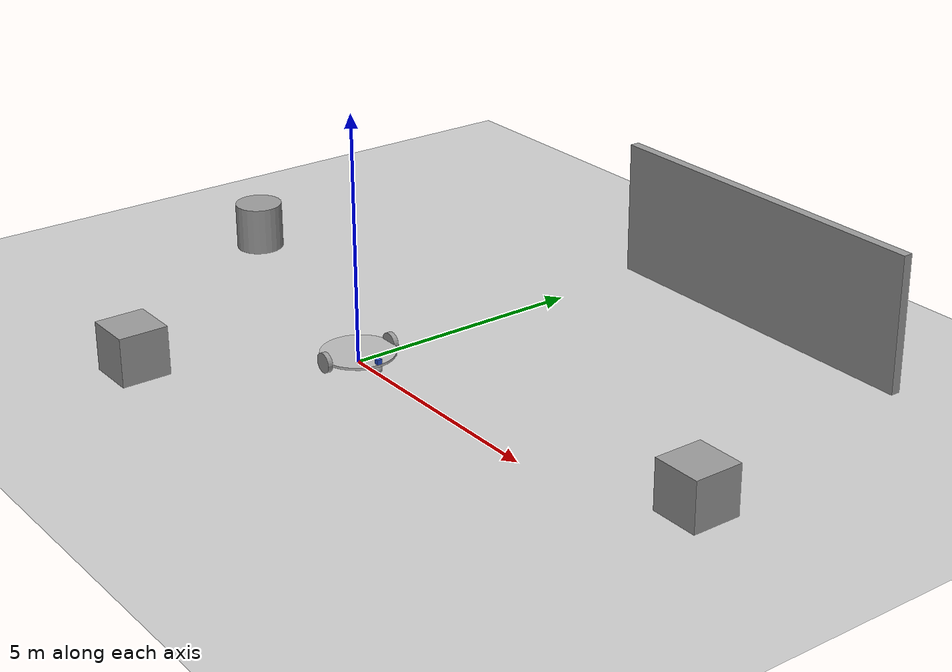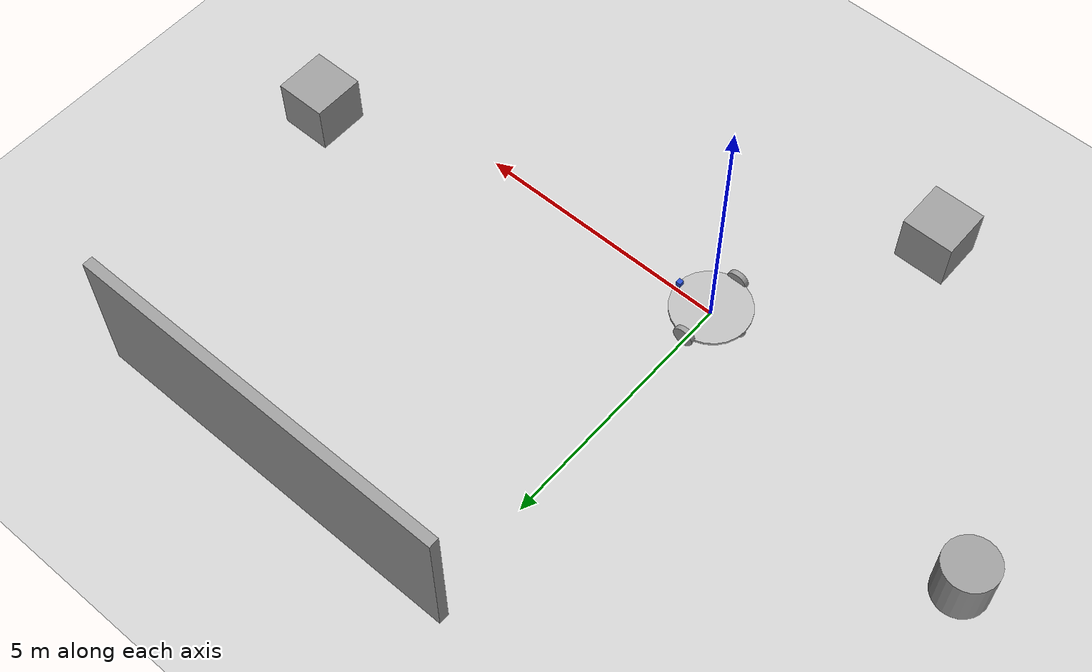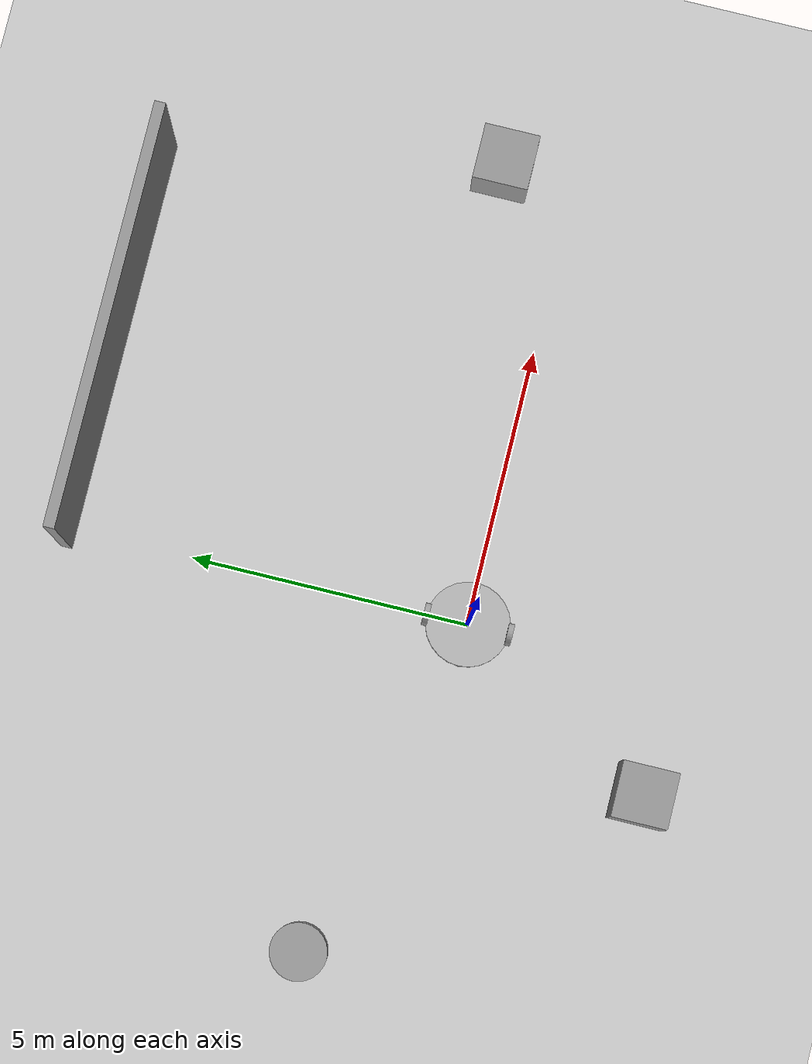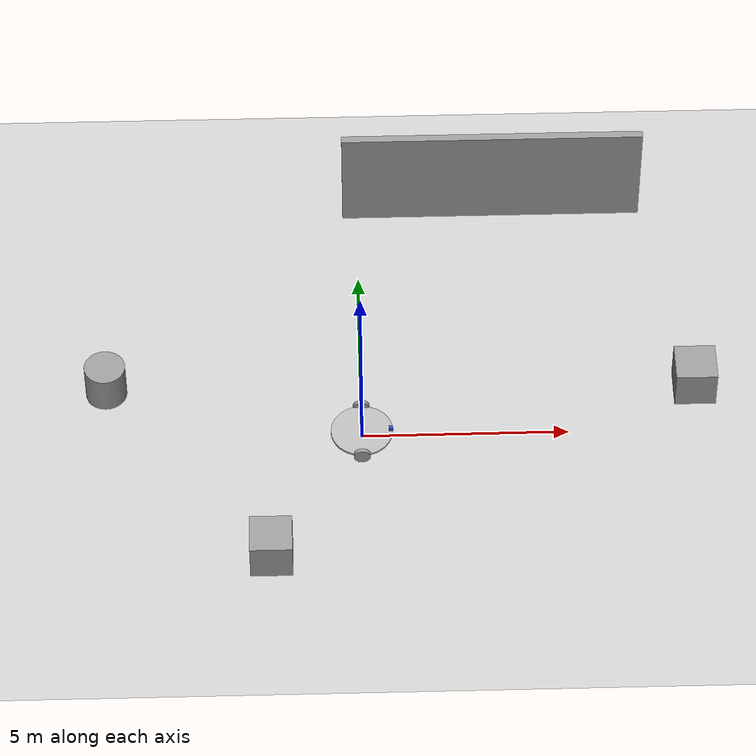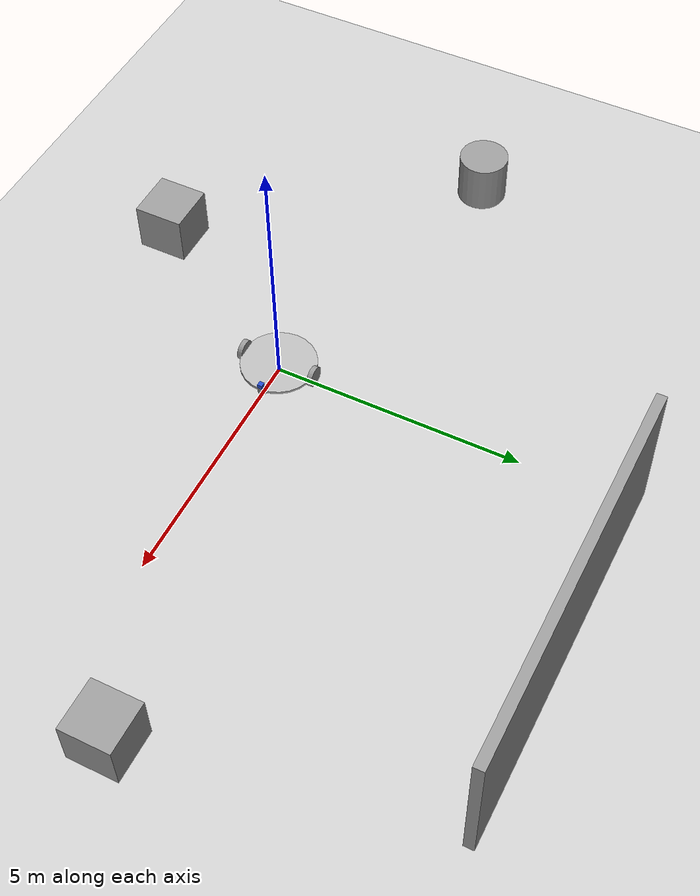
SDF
<sdf version="1.6">
 <world name="default">
  <light name="sun" type="directional">
   <pose>0 0 10 0 -0 0</pose>
   <diffuse>0.8 0.8 0.8 1</diffuse>
   <specular>0.2 0.2 0.2 1</specular>
   <attenuation>
    <range>1000</range>
    <constant>0.9</constant>
    <linear>0.01</linear>
    <quadratic>0.001</quadratic>
   </attenuation>
   <direction>-0.5 0.1 -0.9</direction>
  </light>
  <model name="ground_plane">
   <static>1</static>
   <link name="link">
    <collision name="collision">
     <geometry><plane><normal>0 0 1</normal><size>100 100</size></plane></geometry>
     <surface><friction><ode><mu>100</mu><mu2>50</mu2></ode></friction></surface>
    </collision>
    <visual name="visual">
     <cast_shadows>0</cast_shadows>
     <geometry><plane><normal>0 0 1</normal><size>100 100</size></plane></geometry>
     <material>
      <script><uri>file://media/materials/scripts/gazebo.material</uri><name>Gazebo/Grey</name></script>
     </material>
    </visual>
   </link>
  </model>
  <gravity>0 0 -9.8</gravity>
  <magnetic_field>6e-06 2.3e-05 -4.2e-05</magnetic_field>
  <atmosphere type="adiabatic"/>
  <physics name="default_physics" default="0" type="ode">
   <max_step_size>0.001</max_step_size>
   <real_time_factor>1</real_time_factor>
   <real_time_update_rate>1000</real_time_update_rate>
  </physics>
  <scene><ambient>0.4 0.4 0.4 1</ambient><background>0.7 0.7 0.7 1</background><shadows>1</shadows></scene>
  <spherical_coordinates>
   <surface_model>EARTH_WGS84</surface_model>
   <latitude_deg>0</latitude_deg>
   <longitude_deg>0</longitude_deg>
   <elevation>0</elevation>
   <heading_deg>0</heading_deg>
  </spherical_coordinates>
  <model name="grey_wall">
   <static>1</static>
   <link name="link">
    <pose>0 0 1.4 0 -0 0</pose>
    <collision name="collision"><geometry><box><size>7.5 0.2 2.8</size></box></geometry></collision>
    <visual name="visual">
     <cast_shadows>0</cast_shadows>
     <geometry><box><size>7.5 0.2 2.8</size></box></geometry>
     <material>
      <script>
       <uri>model://grey_wall/materials/scripts</uri>
       <uri>model://grey_wall/materials/textures</uri>
       <name>vrc/grey_wall</name>
      </script>
     </material>
    </visual>
   </link>
   <pose>3.39843 7.20345 0 0 -0 0</pose>
  </model>
  <audio><device>default</device></audio>
  <model name="robot">
   <link name="base_footprint">
    <inertial>
     <pose>0 0 0.2 0 -0 0</pose>
     <mass>5</mass>
     <inertia><ixx>2.02829</ixx><ixy>0</ixy><ixz>0</ixz><iyy>2.87329</iyy><iyz>0</iyz><izz>2.90125</izz></inertia>
    </inertial>
    <collision name="base_footprint_fixed_joint_lump__base_link_collision">
     <pose>0 0 0.2 0 -0 0</pose>
     <geometry><cylinder><length>0.05</length><radius>0.75</radius></cylinder></geometry>
    </collision>
    <collision name="base_footprint_fixed_joint_lump__caster_wheel_back_collision_1">
     <pose>-0.65 0 0.1 0 -0 0</pose>
     <geometry><sphere><radius>0.1</radius></sphere></geometry>
     <surface><friction><ode><mu>0</mu><mu2>0</mu2></ode></friction></surface>
    </collision>
    <collision name="base_footprint_fixed_joint_lump__caster_wheel_front_collision_2">
     <pose>0.65 0 0.1 0 -0 0</pose>
     <geometry><sphere><radius>0.1</radius></sphere></geometry>
     <surface><friction><ode><mu>0</mu><mu2>0</mu2></ode></friction></surface>
    </collision>
    <visual name="base_footprint_visual">
     <geometry><box><size>0.001 0.001 0.001</size></box></geometry>
     <material><script><uri>__default__</uri><name>__default__</name></script></material>
    </visual>
    <visual name="base_footprint_fixed_joint_lump__base_link_visual_1">
     <pose>0 0 0.2 0 -0 0</pose>
     <geometry><cylinder><length>0.05</length><radius>0.75</radius></cylinder></geometry>
     <material><script><uri>__default__</uri><name>__default__</name></script></material>
    </visual>
    <visual name="base_footprint_fixed_joint_lump__caster_wheel_back_visual_2">
     <pose>-0.65 0 0.1 0 -0 0</pose>
     <geometry><sphere><radius>0.1</radius></sphere></geometry>
     <material>
      <script><name>Gazebo/Grey</name><uri>file://media/materials/scripts/gazebo.material</uri></script>
     </material>
    </visual>
    <visual name="base_footprint_fixed_joint_lump__caster_wheel_front_visual_3">
     <pose>0.65 0 0.1 0 -0 0</pose>
     <geometry><sphere><radius>0.1</radius></sphere></geometry>
     <material>
      <script><name>Gazebo/Grey</name><uri>file://media/materials/scripts/gazebo.material</uri></script>
     </material>
    </visual>
    <visual name="base_footprint_fixed_joint_lump__hokuyo_link_visual_4">
     <pose>0.7 0 0.275 0 -0 0</pose>
     <geometry><box><size>0.1 0.1 0.1</size></box></geometry>
     <material>
      <script><name>Gazebo/Blue</name><uri>file://media/materials/scripts/gazebo.material</uri></script>
     </material>
    </visual>
    <sensor name="head_hokuyo_sensor" type="ray">
     <visualize>1</visualize>
     <update_rate>40</update_rate>
     <ray>
      <scan>
       <horizontal>
        <samples>720</samples>
        <resolution>1</resolution>
        <min_angle>-1.5708</min_angle>
        <max_angle>1.5708</max_angle>
       </horizontal>
       <vertical><samples>1</samples><min_angle>0</min_angle><max_angle>0</max_angle></vertical>
      </scan>
      <range><min>0.1</min><max>10</max><resolution>0.001</resolution></range>
     </ray>
     <plugin name="gazebo_ros_head_hokuyo_controller" filename="libgazebo_ros_laser.so">
      <topicName>/scan</topicName>
      <frameName>hokuyo_link</frameName>
      <robotNamespace>/</robotNamespace>
     </plugin>
     <pose>0.7 0 0.275 0 -0 0</pose>
    </sensor>
   </link>
   <link name="left_wheel">
    <pose>0 -0.75 0.2 0 -0 0</pose>
    <inertial>
     <mass>1</mass>
     <inertia><ixx>1</ixx><ixy>0</ixy><ixz>0</ixz><iyy>1</iyy><iyz>0</iyz><izz>1</izz></inertia>
    </inertial>
    <collision name="left_wheel_collision">
     <pose>0 0 0 1.5708 -0 0</pose>
     <geometry><cylinder><length>0.1</length><radius>0.2</radius></cylinder></geometry>
     <surface>
      <contact><ode><kp>1e+07</kp><kd>1</kd></ode></contact>
      <friction><ode><mu>200</mu><mu2>100</mu2></ode></friction>
     </surface>
    </collision>
    <visual name="left_wheel_visual">
     <pose>0 0 0 1.5708 -0 0</pose>
     <geometry><cylinder><length>0.1</length><radius>0.2</radius></cylinder></geometry>
     <material>
      <script><name>Gazebo/Grey</name><uri>file://media/materials/scripts/gazebo.material</uri></script>
     </material>
    </visual>
   </link>
   <joint name="left_wheel_joint" type="revolute">
    <child>left_wheel</child>
    <parent>base_footprint</parent>
    <axis>
     <xyz>0 1 0</xyz>
     <limit><lower>-1e+16</lower><upper>1e+16</upper></limit>
     <dynamics><spring_reference>0</spring_reference><spring_stiffness>0</spring_stiffness></dynamics>
     <use_parent_model_frame>1</use_parent_model_frame>
    </axis>
   </joint>
   <link name="right_wheel">
    <pose>0 0.75 0.2 0 -0 0</pose>
    <inertial>
     <mass>1</mass>
     <inertia><ixx>1</ixx><ixy>0</ixy><ixz>0</ixz><iyy>1</iyy><iyz>0</iyz><izz>1</izz></inertia>
    </inertial>
    <collision name="right_wheel_collision">
     <pose>0 0 0 1.5708 -0 0</pose>
     <geometry><cylinder><length>0.1</length><radius>0.2</radius></cylinder></geometry>
     <surface>
      <contact><ode><kp>1e+07</kp><kd>1</kd></ode></contact>
      <friction><ode><mu>200</mu><mu2>100</mu2></ode></friction>
     </surface>
    </collision>
    <visual name="right_wheel_visual">
     <pose>0 0 0 1.5708 -0 0</pose>
     <geometry><cylinder><length>0.1</length><radius>0.2</radius></cylinder></geometry>
     <material>
      <script><name>Gazebo/Grey</name><uri>file://media/materials/scripts/gazebo.material</uri></script>
     </material>
    </visual>
   </link>
   <joint name="right_wheel_joint" type="revolute">
    <child>right_wheel</child>
    <parent>base_footprint</parent>
    <axis>
     <xyz>0 1 0</xyz>
     <limit><lower>-1e+16</lower><upper>1e+16</upper></limit>
     <dynamics><spring_reference>0</spring_reference><spring_stiffness>0</spring_stiffness></dynamics>
     <use_parent_model_frame>1</use_parent_model_frame>
    </axis>
   </joint>
   <plugin name="differential_drive_controller_front" filename="libgazebo_ros_diff_drive.so">
    <rosDebugLevel>Debug</rosDebugLevel>
    <publishWheelTF>0</publishWheelTF>
    <robotNamespace>/</robotNamespace>
    <publishTf>1</publishTf>
    <publishWheelJointState>0</publishWheelJointState>
    <alwaysOn>1</alwaysOn>
    <updateRate>100.0</updateRate>
    <leftJoint>left_wheel_joint</leftJoint>
    <rightJoint>right_wheel_joint</rightJoint>
    <wheelSeparation>1.5</wheelSeparation>
    <wheelDiameter>0.4</wheelDiameter>
    <broadcastTF>1</broadcastTF>
    <wheelTorque>30</wheelTorque>
    <wheelAcceleration>1.8</wheelAcceleration>
    <commandTopic>cmd_vel</commandTopic>
    <odometryFrame>odom</odometryFrame>
    <odometryTopic>odom</odometryTopic>
    <robotBaseFrame>base_footprint</robotBaseFrame>
   </plugin>
   <static>0</static>
   <plugin name="gazebo_ros_control" filename="libgazebo_ros_control.so">
    <robotNamespace>/</robotNamespace>
   </plugin>
   <pose>5e-06 1e-06 0 0 -0 1e-06</pose>
  </model>
  <model name="unit_box">
   <pose>-2.19256 -3.63408 0.499995 0 1e-05 0</pose>
   <link name="link">
    <inertial>
     <mass>1</mass>
     <inertia>
      <ixx>0.166667</ixx>
      <ixy>0</ixy>
      <ixz>0</ixz>
      <iyy>0.166667</iyy>
      <iyz>0</iyz>
      <izz>0.166667</izz>
     </inertia>
    </inertial>
    <collision name="collision"><geometry><box><size>1 1 1</size></box></geometry></collision>
    <visual name="visual">
     <geometry><box><size>1 1 1</size></box></geometry>
     <material>
      <script><name>Gazebo/Grey</name><uri>file://media/materials/scripts/gazebo.material</uri></script>
     </material>
    </visual>
   </link>
  </model>
  <model name="unit_box_clone">
   <pose>8.12802 1.30076 0.499995 -1e-05 0 0</pose>
   <link name="link">
    <inertial>
     <mass>1</mass>
     <inertia>
      <ixx>0.166667</ixx>
      <ixy>0</ixy>
      <ixz>0</ixz>
      <iyy>0.166667</iyy>
      <iyz>0</iyz>
      <izz>0.166667</izz>
     </inertia>
    </inertial>
    <collision name="collision"><geometry><box><size>1 1 1</size></box></geometry></collision>
    <visual name="visual">
     <geometry><box><size>1 1 1</size></box></geometry>
     <material>
      <script><name>Gazebo/Grey</name><uri>file://media/materials/scripts/gazebo.material</uri></script>
     </material>
    </visual>
   </link>
  </model>
  <model name="unit_cylinder">
   <pose>-6.20007 1.49633 0.499997 3e-06 4e-06 -0</pose>
   <link name="link">
    <inertial>
     <mass>1</mass>
     <inertia><ixx>0.145833</ixx><ixy>0</ixy><ixz>0</ixz><iyy>0.145833</iyy><iyz>0</iyz><izz>0.125</izz></inertia>
    </inertial>
    <collision name="collision">
     <geometry><cylinder><radius>0.5</radius><length>1</length></cylinder></geometry>
    </collision>
    <visual name="visual">
     <geometry><cylinder><radius>0.5</radius><length>1</length></cylinder></geometry>
     <material>
      <script><name>Gazebo/Grey</name><uri>file://media/materials/scripts/gazebo.material</uri></script>
     </material>
    </visual>
   </link>
  </model>
 </world>
</sdf>
